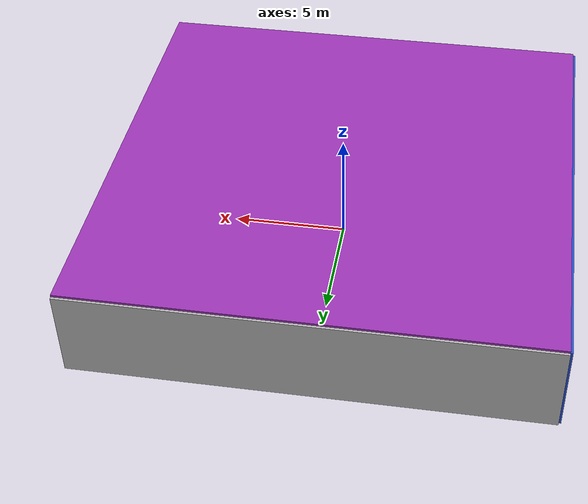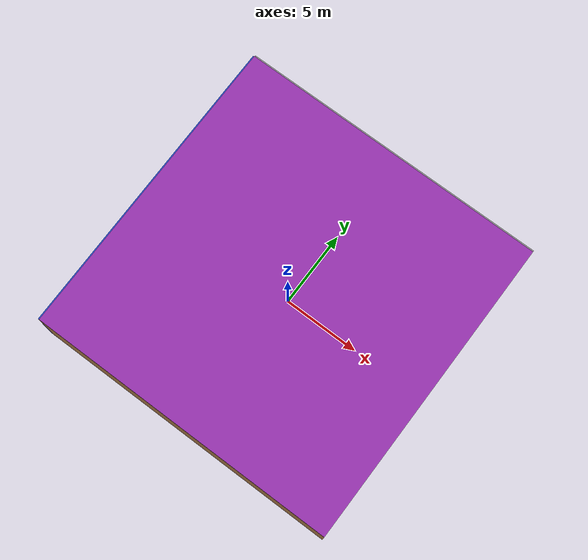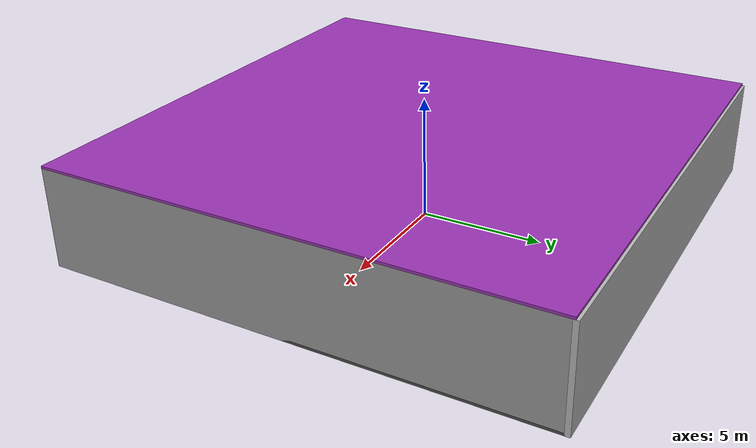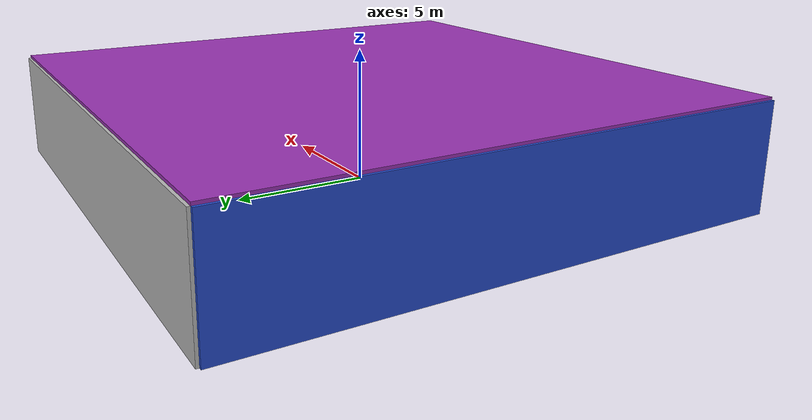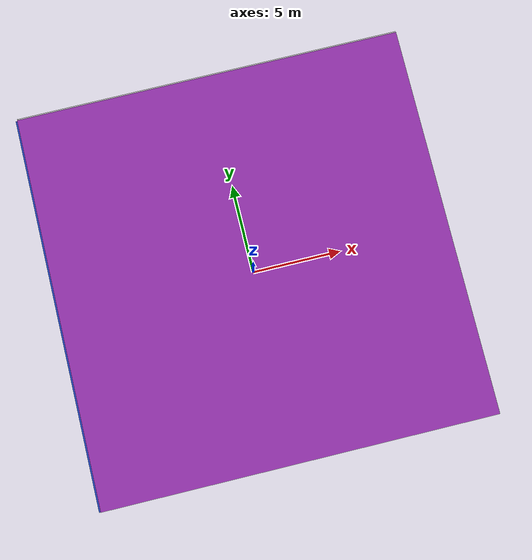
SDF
<sdf version="1.4">
 <world name="default">
  <physics type="ode">
   <max_step_size>0.001</max_step_size>
   <real_time_factor>1</real_time_factor>
   <real_time_update_rate>1000</real_time_update_rate>
   <gravity>0 0 -9.8</gravity>
  </physics>
  <scene><ambient>0.4 0.4 0.4 1</ambient><background>0.7 0.7 0.7 1</background><shadows>1</shadows></scene>
  <model name="Surrounding">
   <static>1</static>
   <link name="Ceiling">
    <collision name="Ceiling_Collision"><geometry><box><size>20 20 0.1</size></box></geometry></collision>
    <visual name="Ceiling_Visual">
     <geometry><box><size>20 20 0.1</size></box></geometry>
     <material>
      <script><uri>file://media/materials/scripts/gazebo.material</uri><name>Gazebo/Purple</name></script>
     </material>
    </visual>
    <pose>0 0 4.05 0 0 0</pose>
   </link>
   <link name="Wall_South">
    <collision name="Wall_South_Collision">
     <geometry><box><size>20 0 4</size></box></geometry>
     <pose>0 0 2 0 -0 0</pose>
    </collision>
    <visual name="Wall_South_Visual">
     <pose>0 0 2 0 -0 0</pose>
     <geometry><box><size>20 0 4</size></box></geometry>
     <material>
      <script><uri>file://media/materials/scripts/gazebo.material</uri><name>Gazebo/WoodPallet</name></script>
     </material>
    </visual>
    <velocity_decay><linear>0</linear><angular>0</angular></velocity_decay>
    <pose>0 -10 0 0 -0 0</pose>
   </link>
   <link name="Wall_East">
    <collision name="Wall_21_Collision">
     <geometry><box><size>20 0 4</size></box></geometry>
     <pose>0 0 2 0 -0 0</pose>
    </collision>
    <visual name="Wall_21_Visual">
     <pose>0 0 2 0 -0 0</pose>
     <geometry><box><size>20 0 4</size></box></geometry>
     <material>
      <script><uri>file://media/materials/scripts/gazebo.material</uri><name>Gazebo/Grey</name></script>
     </material>
    </visual>
    <velocity_decay><linear>0</linear><angular>0</angular></velocity_decay>
    <pose>10 0 0 0 -0 1.5708</pose>
   </link>
   <link name="Wall_North">
    <collision name="Wall_22_Collision">
     <geometry><box><size>20 0.2 4</size></box></geometry>
     <pose>0 0 2 0 -0 0</pose>
    </collision>
    <visual name="Wall_22_Visual">
     <pose>0 0 2 0 -0 0</pose>
     <geometry><box><size>20 0.2 4</size></box></geometry>
     <material>
      <script><uri>file://media/materials/scripts/gazebo.material</uri><name>Gazebo/PioneerBody</name></script>
     </material>
    </visual>
    <velocity_decay><linear>0</linear><angular>0</angular></velocity_decay>
    <pose>0 10 0 0 -0 0</pose>
   </link>
   <link name="Wall_West">
    <collision name="Wall_23_Collision">
     <geometry><box><size>20 0.2 4</size></box></geometry>
     <pose>0 0 2 0 -0 0</pose>
    </collision>
    <visual name="Wall_23_Visual">
     <pose>0 0 2 0 -0 0</pose>
     <geometry><box><size>20 0.2 4</size></box></geometry>
     <material>
      <script><uri>file://media/materials/scripts/gazebo.material</uri><name>Gazebo/Blue</name></script>
     </material>
    </visual>
    <velocity_decay><linear>0</linear><angular>0</angular></velocity_decay>
    <pose>-10 0 0 0 0 -1.5708</pose>
   </link>
   <link name="Ground_link">
    <collision name="collision">
     <pose>0 0 .05 0 -0 0</pose>
     <geometry><box><size>20 20 0.1</size></box></geometry>
    </collision>
    <visual name="visual">
     <pose>0 0 .05 0 -0 0</pose>
     <geometry><box><size>20 20 0.1</size></box></geometry>
     <material>
      <script><uri>file://media/materials/scripts/gazebo.material</uri><name>Gazebo/DarkGrey</name></script>
     </material>
    </visual>
   </link>
   <static>1</static>
  </model>
  <spherical_coordinates>
   <surface_model>EARTH_WGS84</surface_model>
   <latitude_deg>0</latitude_deg>
   <longitude_deg>0</longitude_deg>
   <elevation>0</elevation>
   <heading_deg>0</heading_deg>
  </spherical_coordinates>
  <light name="lightball_0" type="diffuse">
   <diffuse>0.8 0.8 0.8 1</diffuse>
   <specular>0.2 0.2 0.2 1</specular>
   <attenuation>
    <range>100</range>
    <constant>0.7</constant>
    <linear>0.01</linear>
    <quadratic>0.001</quadratic>
   </attenuation>
   <direction>-0.5 0.1 -0.9</direction>
   <pose>-3.9085261356 5.73033672374 1.4626353156 0 0 0</pose>
  </light>
  <light name="lightball_1" type="diffuse">
   <diffuse>0.8 0.8 0.8 1</diffuse>
   <specular>0.2 0.2 0.2 1</specular>
   <attenuation>
    <range>100</range>
    <constant>0.7</constant>
    <linear>0.01</linear>
    <quadratic>0.001</quadratic>
   </attenuation>
   <direction>-0.5 0.1 -0.9</direction>
   <pose>-3.21769883402 -4.45520801092 3.05302417515 0 0 0</pose>
  </light>
  <light name="lightball_2" type="diffuse">
   <diffuse>0.8 0.8 0.8 1</diffuse>
   <specular>0.2 0.2 0.2 1</specular>
   <attenuation>
    <range>100</range>
    <constant>0.7</constant>
    <linear>0.01</linear>
    <quadratic>0.001</quadratic>
   </attenuation>
   <direction>-0.5 0.1 -0.9</direction>
   <pose>-6.85301383808 7.17620241749 1.06604533368 0 0 0</pose>
  </light>
  <light name="lightball_3" type="diffuse">
   <diffuse>0.8 0.8 0.8 1</diffuse>
   <specular>0.2 0.2 0.2 1</specular>
   <attenuation>
    <range>100</range>
    <constant>0.7</constant>
    <linear>0.01</linear>
    <quadratic>0.001</quadratic>
   </attenuation>
   <direction>-0.5 0.1 -0.9</direction>
   <pose>3.46620431714 4.9804187907 0.969585180282 0 0 0</pose>
  </light>
  <light name="lightball_4" type="diffuse">
   <diffuse>0.8 0.8 0.8 1</diffuse>
   <specular>0.2 0.2 0.2 1</specular>
   <attenuation>
    <range>100</range>
    <constant>0.7</constant>
    <linear>0.01</linear>
    <quadratic>0.001</quadratic>
   </attenuation>
   <direction>-0.5 0.1 -0.9</direction>
   <pose>-0.413379106281 -3.71938678906 1.23126220019 0 0 0</pose>
  </light>
  <light name="lightball_5" type="diffuse">
   <diffuse>0.8 0.8 0.8 1</diffuse>
   <specular>0.2 0.2 0.2 1</specular>
   <attenuation>
    <range>100</range>
    <constant>0.7</constant>
    <linear>0.01</linear>
    <quadratic>0.001</quadratic>
   </attenuation>
   <direction>-0.5 0.1 -0.9</direction>
   <pose>4.50280243981 -1.26571216208 2.59832739166 0 0 0</pose>
  </light>
  <light name="lightball_6" type="diffuse">
   <diffuse>0.8 0.8 0.8 1</diffuse>
   <specular>0.2 0.2 0.2 1</specular>
   <attenuation>
    <range>100</range>
    <constant>0.7</constant>
    <linear>0.01</linear>
    <quadratic>0.001</quadratic>
   </attenuation>
   <direction>-0.5 0.1 -0.9</direction>
   <pose>3.62650373159 6.69053887834 3.5909047549 0 0 0</pose>
  </light>
  <light name="lightball_7" type="diffuse">
   <diffuse>0.8 0.8 0.8 1</diffuse>
   <specular>0.2 0.2 0.2 1</specular>
   <attenuation>
    <range>100</range>
    <constant>0.7</constant>
    <linear>0.01</linear>
    <quadratic>0.001</quadratic>
   </attenuation>
   <direction>-0.5 0.1 -0.9</direction>
   <pose>-4.67931535822 -5.92722649318 1.02139457355 0 0 0</pose>
  </light>
  <light name="lightball_8" type="diffuse">
   <diffuse>0.8 0.8 0.8 1</diffuse>
   <specular>0.2 0.2 0.2 1</specular>
   <attenuation>
    <range>100</range>
    <constant>0.7</constant>
    <linear>0.01</linear>
    <quadratic>0.001</quadratic>
   </attenuation>
   <direction>-0.5 0.1 -0.9</direction>
   <pose>6.98238192848 -7.21243835587 2.63518483812 0 0 0</pose>
  </light>
  <light name="lightball_9" type="diffuse">
   <diffuse>0.8 0.8 0.8 1</diffuse>
   <specular>0.2 0.2 0.2 1</specular>
   <attenuation>
    <range>100</range>
    <constant>0.7</constant>
    <linear>0.01</linear>
    <quadratic>0.001</quadratic>
   </attenuation>
   <direction>-0.5 0.1 -0.9</direction>
   <pose>1.26207665507 2.5841526676 1.1021272792 0 0 0</pose>
  </light>
  <light name="lightball_10" type="diffuse">
   <diffuse>0.8 0.8 0.8 1</diffuse>
   <specular>0.2 0.2 0.2 1</specular>
   <attenuation>
    <range>100</range>
    <constant>0.7</constant>
    <linear>0.01</linear>
    <quadratic>0.001</quadratic>
   </attenuation>
   <direction>-0.5 0.1 -0.9</direction>
   <pose>-1.12154842093 -6.52550717288 3.67506861934 0 0 0</pose>
  </light>
  <include>
   <uri>model://construction_cone</uri>
   <pose>-4.71211977408 1.61764690686 0 0 0 2.28658355277</pose>
  </include>
  <include><uri>model://cabinet</uri><pose>-3.61793019274 3.53224553262 0 0 0 2.40914889979</pose></include>
  <include>
   <uri>model://construction_cone</uri>
   <pose>-1.85015833984 4.35269106284 0 0 0 2.61866528871</pose>
  </include>
  <include><uri>model://cabinet</uri><pose>0.92028337434 -4.83392410061 0 0 0 0.451727268822</pose></include>
  <include>
   <uri>model://construction_cone</uri>
   <pose>0.915612060634 4.58169562436 0 0 0 2.99046857411</pose>
  </include>
  <include><uri>model://table</uri><pose>5.47195163127 -8.31873318917 0 0 0 0.29961299917</pose></include>
 </world>
</sdf>

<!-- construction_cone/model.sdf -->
<sdf version="1.5">
  <model name="Construction Cone">
    <link name="link">
      <collision name="collision">
        <geometry>
          <mesh>
            <scale>10 10 10</scale>
            <uri>file://isr-testbed/construction_cone/meshes/construction_cone.dae</uri>
          </mesh>
        </geometry>
      </collision>
      <visual name="visual">
        <geometry>
          <mesh>
            <scale>10 10 10</scale>
            <uri>file://isr-testbed/construction_cone/meshes/construction_cone.dae</uri>
          </mesh>
        </geometry>
      </visual>
    </link>
  </model>
</sdf>

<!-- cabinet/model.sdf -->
<sdf version="1.5">
  <model name="cabinet">
    <static>true</static>
    <link name="cabinet_bottom_plate">
      <inertial>
        <pose>0 0 -1 0 0 0</pose>
        <inertia>
          <ixx>2.050000</ixx>
          <ixy>0</ixy>
          <ixz>0</ixz>
          <iyy>2.050000</iyy>
          <iyz>0</iyz>
          <izz>2.050000</izz>
        </inertia>
        <mass>25.000000</mass>
      </inertial>
      <collision name="cabinet_bottom_plate_geom">
        <pose>0 0 0.010000 0 0 0</pose>
        <geometry>
          <box>
            <size>0.450000 0.450000 0.020000</size>
          </box>
        </geometry>
      </collision>
      <visual name="cabinet_bottom_plate_geom_visual">
        <pose>0 0 0.010000 0 0 0</pose>
        <geometry>
          <box>
            <size>0.450000 0.450000 0.020000</size>
          </box>
        </geometry>
        <material>
          <script>
            <uri>model://media/materials/scripts/gazebo.material</uri>
            <name>Gazebo/Wood</name>
          </script>
        </material>
      </visual>
      <collision name="cabinet_bottom_plate_geom_cabinet_back_plate">
        <pose>0.235000 0 0.510000 0 0 0</pose>
        <geometry>
          <box>
            <size>0.020000 0.450000 1.020000</size>
          </box>
        </geometry>
      </collision>
      <visual name="cabinet_bottom_plate_geom_cabinet_back_plate_visual">
        <pose>0.235000 0 0.510000 0 0 0</pose>
        <geometry>
          <box>
            <size>0.020000 0.450000 1.020000</size>
          </box>
        </geometry>
        <material>
          <script>
            <uri>model://media/materials/scripts/gazebo.material</uri>
            <name>Gazebo/Wood</name>
          </script>
        </material>
      </visual>
      <collision name="cabinet_bottom_plate_geom_cabinet_left_plate">
        <pose>0 0.235000 0.510000 0 0 0</pose>
        <geometry>
          <box>
            <size>0.450000 0.020000 1.020000</size>
          </box>
        </geometry>
      </collision>
      <visual name="cabinet_bottom_plate_geom_cabinet_left_plate_visual">
        <pose>0 0.235000 0.510000 0 0 0</pose>
        <geometry>
          <box>
            <size>0.450000 0.020000 1.020000</size>
          </box>
        </geometry>
        <material>
          <script>
            <uri>model://media/materials/scripts/gazebo.material</uri>
            <name>Gazebo/Wood</name>
          </script>
        </material>
      </visual>
      <collision name="cabinet_bottom_plate_geom_cabinet_middle_plate">
        <pose>0 0 0.510000 0 0 0</pose>
        <geometry>
          <box>
            <size>0.450000 0.450000 0.020000</size>
          </box>
        </geometry>
      </collision>
      <visual name="cabinet_bottom_plate_geom_cabinet_middle_plate_visual">
        <pose>0 0 0.510000 0 0 0</pose>
        <geometry>
          <box>
            <size>0.450000 0.450000 0.020000</size>
          </box>
        </geometry>
        <material>
          <script>
            <uri>model://media/materials/scripts/gazebo.material</uri>
            <name>Gazebo/Wood</name>
          </script>
        </material>
      </visual>
      <collision name="cabinet_bottom_plate_geom_cabinet_right_plate">
        <pose>0 -0.235000 0.510000 0 0 0</pose>
        <geometry>
          <box>
            <size>0.450000 0.020000 1.020000</size>
          </box>
        </geometry>
      </collision>
      <visual name="cabinet_bottom_plate_geom_cabinet_right_plate_visual">
        <pose>0 -0.235000 0.510000 0 0 0</pose>
        <geometry>
          <box>
            <size>0.450000 0.020000 1.020000</size>
          </box>
        </geometry>
        <material>
          <script>
            <uri>model://media/materials/scripts/gazebo.material</uri>
            <name>Gazebo/Wood</name>
          </script>
        </material>
      </visual>
      <collision name="cabinet_bottom_plate_geom_cabinet_top_plate">
        <pose>0 0 1.010000 0 0 0</pose>
        <geometry>
          <box>
            <size>0.450000 0.450000 0.020000</size>
          </box>
        </geometry>
      </collision>
      <visual name="cabinet_bottom_plate_geom_cabinet_top_plate_visual">
        <pose>0 0 1.010000 0 0 0</pose>
        <geometry>
          <box>
            <size>0.450000 0.450000 0.020000</size>
          </box>
        </geometry>
        <material>
          <script>
            <uri>model://media/materials/scripts/gazebo.material</uri>
            <name>Gazebo/Wood</name>
          </script>
        </material>
      </visual>
    </link>
  </model>
</sdf>

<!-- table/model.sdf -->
<sdf version="1.5">
  <model name="table">
    <static>true</static>
    <link name="link">
      <collision name="surface">
        <pose>0 0 1.0 0 0 0</pose>
        <geometry>
          <box>
            <size>1.5 0.8 0.03</size>
          </box>
        </geometry>
        <surface>
          <friction>
            <ode>
              <mu>0.6</mu>
              <mu2>0.6</mu2>
            </ode>
          </friction>
        </surface>
      </collision>
      <visual name="visual1">
        <pose>0 0 1.0 0 0 0</pose>
        <geometry>
          <box>
            <size>1.5 0.8 0.03</size>
          </box>
        </geometry>
        <material>
          <script>
            <uri>model://media/materials/scripts/gazebo.material</uri>
            <name>Gazebo/Wood</name>
          </script>
        </material>
      </visual>
      <collision name="front_left_leg">
        <pose>0.68 0.38 0.5 0 0 0</pose>
        <geometry>
          <cylinder>
            <radius>0.02</radius>
            <length>1.0</length>
          </cylinder>
        </geometry>
      </collision>
      <visual name="front_left_leg">
        <pose>0.68 0.38 0.5 0 0 0</pose>
        <geometry>
          <cylinder>
            <radius>0.02</radius>
            <length>1.0</length>
          </cylinder>
        </geometry>
        <material>
          <script>
            <uri>model://media/materials/scripts/gazebo.material</uri>
            <name>Gazebo/Grey</name>
          </script>
        </material>
      </visual>
      <collision name="front_right_leg">
        <pose>0.68 -0.38 0.5 0 0 0</pose>
        <geometry>
          <cylinder>
            <radius>0.02</radius>
            <length>1.0</length>
          </cylinder>
        </geometry>
      </collision>
      <visual name="front_right_leg">
        <pose>0.68 -0.38 0.5 0 0 0</pose>
        <geometry>
          <cylinder>
            <radius>0.02</radius>
            <length>1.0</length>
          </cylinder>
        </geometry>
        <material>
          <script>
            <uri>model://media/materials/scripts/gazebo.material</uri>
            <name>Gazebo/Grey</name>
          </script>
        </material>
      </visual>
      <collision name="back_right_leg">
        <pose>-0.68 -0.38 0.5 0 0 0</pose>
        <geometry>
          <cylinder>
            <radius>0.02</radius>
            <length>1.0</length>
          </cylinder>
        </geometry>
      </collision>
      <visual name="back_right_leg">
        <pose>-0.68 -0.38 0.5 0 0 0</pose>
        <geometry>
          <cylinder>
            <radius>0.02</radius>
            <length>1.0</length>
          </cylinder>
        </geometry>
        <material>
          <script>
            <uri>model://media/materials/scripts/gazebo.material</uri>
            <name>Gazebo/Grey</name>
          </script>
        </material>
      </visual>
      <collision name="back_left_leg">
        <pose>-0.68 0.38 0.5 0 0 0</pose>
        <geometry>
          <cylinder>
            <radius>0.02</radius>
            <length>1.0</length>
          </cylinder>
        </geometry>
      </collision>
      <visual name="back_left_leg">
        <pose>-0.68 0.38 0.5 0 0 0</pose>
        <geometry>
          <cylinder>
            <radius>0.02</radius>
            <length>1.0</length>
          </cylinder>
        </geometry>
        <material>
          <script>
            <uri>model://media/materials/scripts/gazebo.material</uri>
            <name>Gazebo/Grey</name>
          </script>
        </material>
      </visual>
    </link>
  </model>
</sdf>
